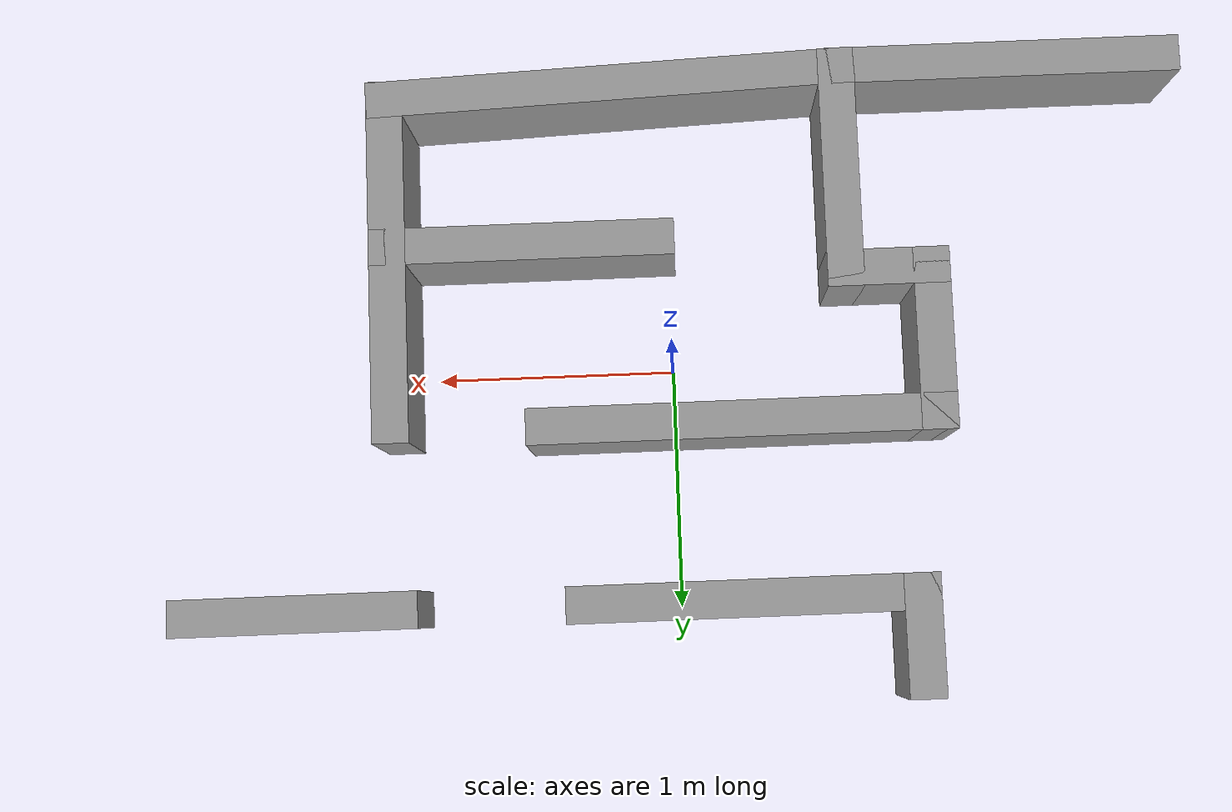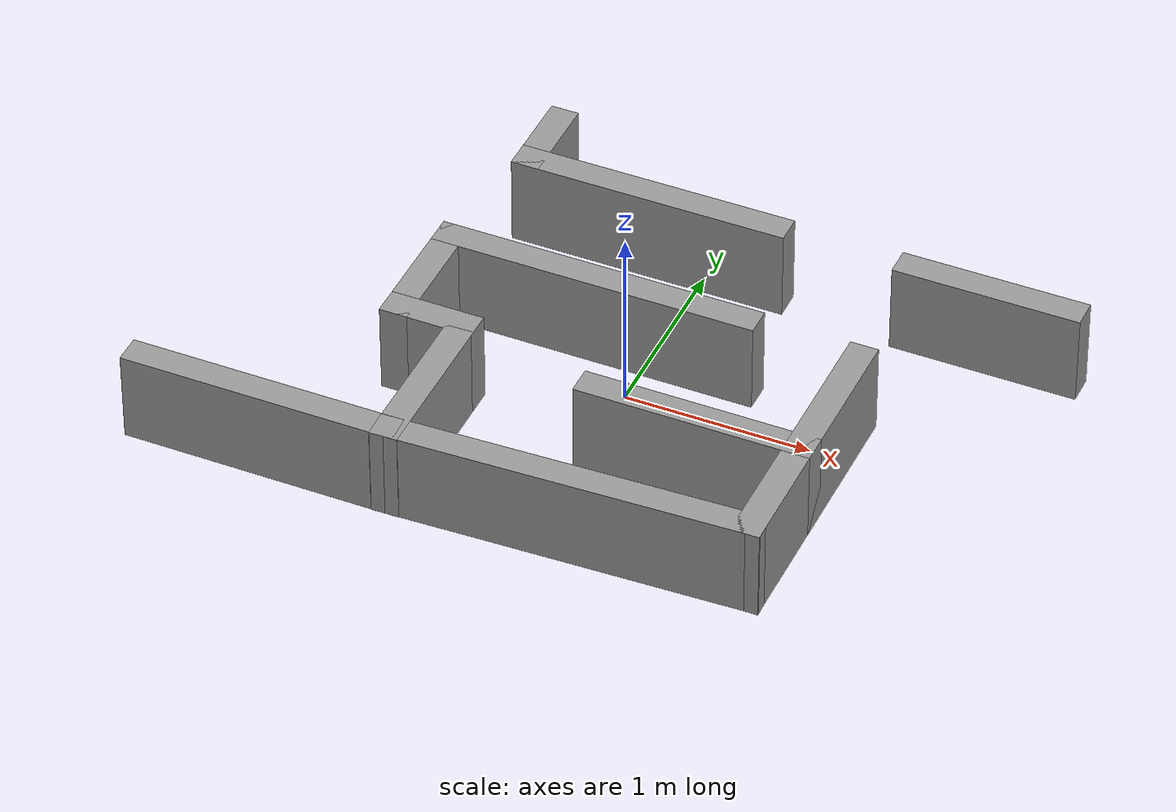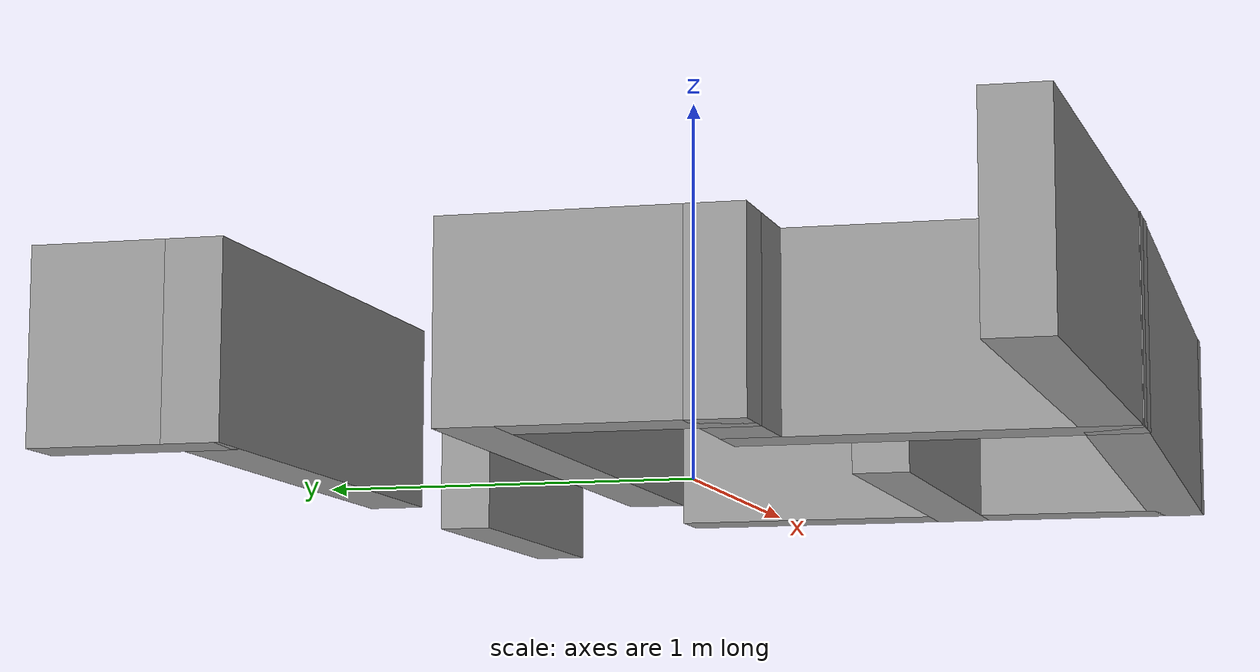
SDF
<?xml version='1.0'?>
<sdf version='1.7'>
  <model name='Maze1'>
    <pose>-0.0455 0.068623 0 0 -0 0</pose>
    <link name='Wall_26'>
      <collision name='Wall_26_Collision'>
        <geometry>
          <box>
            <size>1.5 0.15 0.5</size>
          </box>
        </geometry>
        <pose>0 0 0.25 0 -0 0</pose>
      </collision>
      <visual name='Wall_26_Visual'>
        <pose>0 0 0.25 0 -0 0</pose>
        <geometry>
          <box>
            <size>1.5 0.15 0.5</size>
          </box>
        </geometry>
        <material>
          <script>
            <uri>file://media/materials/scripts/gazebo.material</uri>
            <name>Gazebo/Grey</name>
          </script>
          <ambient>1 1 1 1</ambient>
        </material>
        <meta>
          <layer>0</layer>
        </meta>
      </visual>
      <pose>-1.3495 -1.25862 0 0 -0 0</pose>
    </link>
    <link name='Wall_27'>
      <collision name='Wall_27_Collision'>
        <geometry>
          <box>
            <size>1 0.15 0.5</size>
          </box>
        </geometry>
        <pose>0 0 0.25 0 -0 0</pose>
      </collision>
      <visual name='Wall_27_Visual'>
        <pose>0 0 0.25 0 -0 0</pose>
        <geometry>
          <box>
            <size>1 0.15 0.5</size>
          </box>
        </geometry>
        <material>
          <script>
            <uri>file://media/materials/scripts/gazebo.material</uri>
            <name>Gazebo/Grey</name>
          </script>
          <ambient>1 1 1 1</ambient>
        </material>
        <meta>
          <layer>0</layer>
        </meta>
      </visual>
      <pose>-0.6745 -0.833623 0 0 -0 1.5708</pose>
    </link>
    <link name='Wall_28'>
      <collision name='Wall_28_Collision'>
        <geometry>
          <box>
            <size>0.5 0.15 0.5</size>
          </box>
        </geometry>
        <pose>0 0 0.25 0 -0 0</pose>
      </collision>
      <visual name='Wall_28_Visual'>
        <pose>0 0 0.25 0 -0 0</pose>
        <geometry>
          <box>
            <size>0.5 0.15 0.5</size>
          </box>
        </geometry>
        <material>
          <script>
            <uri>file://media/materials/scripts/gazebo.material</uri>
            <name>Gazebo/Grey</name>
          </script>
          <ambient>1 1 1 1</ambient>
        </material>
        <meta>
          <layer>0</layer>
        </meta>
      </visual>
      <pose>-0.8495 -0.408623 0 0 -0 3.14159</pose>
    </link>
    <link name='Wall_29'>
      <collision name='Wall_29_Collision'>
        <geometry>
          <box>
            <size>0.75 0.15 0.5</size>
          </box>
        </geometry>
        <pose>0 0 0.25 0 -0 0</pose>
      </collision>
      <visual name='Wall_29_Visual'>
        <pose>0 0 0.25 0 -0 0</pose>
        <geometry>
          <box>
            <size>0.75 0.15 0.5</size>
          </box>
        </geometry>
        <material>
          <script>
            <uri>file://media/materials/scripts/gazebo.material</uri>
            <name>Gazebo/Grey</name>
          </script>
          <ambient>1 1 1 1</ambient>
        </material>
        <meta>
          <layer>0</layer>
        </meta>
      </visual>
      <pose>-1.0245 -0.108623 0 0 -0 1.5708</pose>
    </link>
    <link name='Wall_30'>
      <collision name='Wall_30_Collision'>
        <geometry>
          <box>
            <size>1.75 0.15 0.5</size>
          </box>
        </geometry>
        <pose>0 0 0.25 0 -0 0</pose>
      </collision>
      <visual name='Wall_30_Visual'>
        <pose>0 0 0.25 0 -0 0</pose>
        <geometry>
          <box>
            <size>1.75 0.15 0.5</size>
          </box>
        </geometry>
        <material>
          <script>
            <uri>file://media/materials/scripts/gazebo.material</uri>
            <name>Gazebo/Grey</name>
          </script>
          <ambient>1 1 1 1</ambient>
        </material>
        <meta>
          <layer>0</layer>
        </meta>
      </visual>
      <pose>-0.2245 0.191377 0 0 -0 0</pose>
    </link>
    <link name='Wall_33'>
      <collision name='Wall_33_Collision'>
        <geometry>
          <box>
            <size>1 0.15 0.5</size>
          </box>
        </geometry>
        <pose>0 0 0.25 0 -0 0</pose>
      </collision>
      <visual name='Wall_33_Visual'>
        <pose>0 0 0.25 0 -0 0</pose>
        <geometry>
          <box>
            <size>1 0.15 0.5</size>
          </box>
        </geometry>
        <material>
          <script>
            <uri>file://media/materials/scripts/gazebo.material</uri>
            <name>Gazebo/Grey</name>
          </script>
          <ambient>1 1 1 1</ambient>
        </material>
        <meta>
          <layer>0</layer>
        </meta>
      </visual>
      <pose>1.5995 0.903377 0 0 -0 0</pose>
    </link>
    <link name='Wall_35'>
      <collision name='Wall_35_Collision'>
        <geometry>
          <box>
            <size>1.5 0.15 0.5</size>
          </box>
        </geometry>
        <pose>0 0 0.25 0 -0 0</pose>
      </collision>
      <visual name='Wall_35_Visual'>
        <pose>0 0 0.25 0 -0 0</pose>
        <geometry>
          <box>
            <size>1.5 0.15 0.5</size>
          </box>
        </geometry>
        <material>
          <script>
            <uri>file://media/materials/scripts/gazebo.material</uri>
            <name>Gazebo/Grey</name>
          </script>
          <ambient>1 1 1 1</ambient>
        </material>
        <meta>
          <layer>0</layer>
        </meta>
      </visual>
      <pose>-0.2395 0.911377 0 0 -0 3.14159</pose>
    </link>
    <link name='Wall_36'>
      <collision name='Wall_36_Collision'>
        <geometry>
          <box>
            <size>0.5 0.15 0.5</size>
          </box>
        </geometry>
        <pose>0 0 0.25 0 -0 0</pose>
      </collision>
      <visual name='Wall_36_Visual'>
        <pose>0 0 0.25 0 -0 0</pose>
        <geometry>
          <box>
            <size>0.5 0.15 0.5</size>
          </box>
        </geometry>
        <material>
          <script>
            <uri>file://media/materials/scripts/gazebo.material</uri>
            <name>Gazebo/Grey</name>
          </script>
          <ambient>1 1 1 1</ambient>
        </material>
        <meta>
          <layer>0</layer>
        </meta>
      </visual>
      <pose>-0.9145 1.08638 0 0 -0 1.5708</pose>
    </link>
    <link name='Wall_38'>
      <collision name='Wall_38_Collision'>
        <geometry>
          <box>
            <size>1.5 0.15 0.5</size>
          </box>
        </geometry>
        <pose>0 0 0.25 0 -0 0</pose>
      </collision>
      <visual name='Wall_38_Visual'>
        <pose>0 0 0.25 0 -0 0</pose>
        <geometry>
          <box>
            <size>1.5 0.15 0.5</size>
          </box>
        </geometry>
        <material>
          <script>
            <uri>file://media/materials/scripts/gazebo.material</uri>
            <name>Gazebo/Grey</name>
          </script>
          <ambient>1 1 1 1</ambient>
        </material>
        <meta>
          <layer>0</layer>
        </meta>
      </visual>
      <pose>1.1955 -0.513623 0 0 -0 -1.5708</pose>
    </link>
    <link name='Wall_39'>
      <collision name='Wall_39_Collision'>
        <geometry>
          <box>
            <size>2.02131 0.15 0.5</size>
          </box>
        </geometry>
        <pose>0 0 0.25 0 -0 0</pose>
      </collision>
      <visual name='Wall_39_Visual'>
        <pose>0 0 0.25 0 -0 0</pose>
        <geometry>
          <box>
            <size>2.02131 0.15 0.5</size>
          </box>
        </geometry>
        <material>
          <script>
            <uri>file://media/materials/scripts/gazebo.material</uri>
            <name>Gazebo/Grey</name>
          </script>
          <ambient>1 1 1 1</ambient>
        </material>
        <meta>
          <layer>0</layer>
        </meta>
      </visual>
      <pose>0.2605 -1.22362 0 0 -0 -3.10418</pose>
    </link>
    <link name='Wall_41'>
      <collision name='Wall_41_Collision'>
        <geometry>
          <box>
            <size>1.25 0.15 0.5</size>
          </box>
        </geometry>
        <pose>0 0 0.25 0 -0 0</pose>
      </collision>
      <visual name='Wall_41_Visual'>
        <pose>0 0 0.25 0 -0 0</pose>
        <geometry>
          <box>
            <size>1.25 0.15 0.5</size>
          </box>
        </geometry>
        <material>
          <script>
            <uri>file://media/materials/scripts/gazebo.material</uri>
            <name>Gazebo/Grey</name>
          </script>
          <ambient>1 1 1 1</ambient>
        </material>
        <meta>
          <layer>0</layer>
        </meta>
      </visual>
      <pose>0.6455 -0.568623 0 0 -0 3.14159</pose>
    </link>
    <static>1</static>
  </model>
</sdf>
